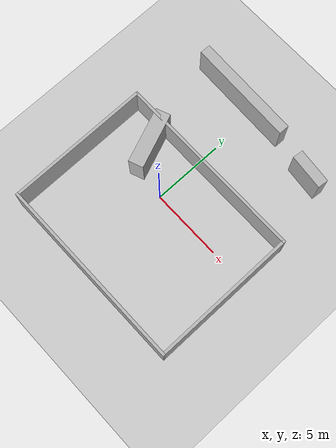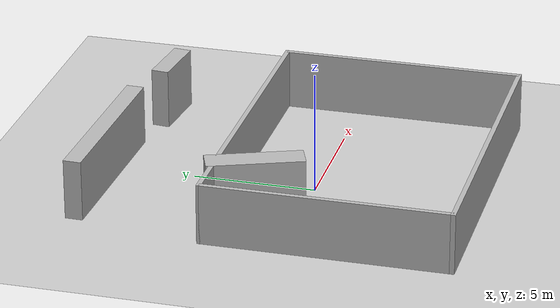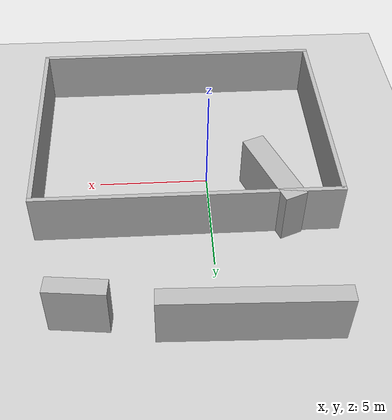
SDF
<?xml version="1.0" ?>
<sdf version="1.5">
  <world name="default">
    <!-- A global light source -->
    <include>
      <uri>model://sun</uri>
    </include>

    <!-- A ground plane -->
    <include>
      <uri>model://ground_plane</uri>
    </include>

    <!-- Room from map -->
    <model name="room_model">
      <static>true</static>
      <link name="walls_link">

        <collision name="north_wall_collision">
          <pose>1.0700000000000003 3.160000000000001 1.25 0 0 0</pose>
          <geometry>
            <box>
              <size>13.5 0.2 2.5</size>
            </box>
          </geometry>
        </collision>
        <visual name="north_wall_visual">
          <pose>1.0700000000000003 3.160000000000001 1.25 0 0 0</pose>
          <geometry>
            <box>
              <size>13.5 0.2 2.5</size>
            </box>
          </geometry>
          <material>
            <script>
              <uri>file://media/materials/scripts/gazebo.material</uri>
              <n>Gazebo/White</n>
            </script>
          </material>
        </visual>

        <!-- South wall -->
        <collision name="south_wall_collision">
          <pose>1.0700000000000003 -6.79 1.25 0 0 0</pose>
          <geometry>
            <box>
              <size>13.5 0.2 2.5</size>
            </box>
          </geometry>
        </collision>
        <visual name="south_wall_visual">
          <pose>1.0700000000000003 -6.79 1.25 0 0 0</pose>
          <geometry>
            <box>
              <size>13.5 0.2 2.5</size>
            </box>
          </geometry>
          <material>
            <script>
              <uri>file://media/materials/scripts/gazebo.material</uri>
              <n>Gazebo/White</n>
            </script>
          </material>
        </visual>

        <!-- East wall -->
        <collision name="east_wall_collision">
          <pose>7.720000000000001 -1.8149999999999995 1.25 0 0 0</pose>
          <geometry>
            <box>
              <size>0.2 9.950000000000001 2.5</size>
            </box>
          </geometry>
        </collision>
        <visual name="east_wall_visual">
          <pose>7.720000000000001 -1.8149999999999995 1.25 0 0 0</pose>
          <geometry>
            <box>
              <size>0.2 9.950000000000001 2.5</size>
            </box>
          </geometry>
          <material>
            <script>
              <uri>file://media/materials/scripts/gazebo.material</uri>
              <n>Gazebo/White</n>
            </script>
          </material>
        </visual>

        <!-- West wall -->
        <collision name="west_wall_collision">
          <pose>-5.58 -1.8149999999999995 1.25 0 0 0</pose>
          <geometry>
            <box>
              <size>0.2 9.950000000000001 2.5</size>
            </box>
          </geometry>
        </collision>
        <visual name="west_wall_visual">
          <pose>-5.58 -1.8149999999999995 1.25 0 0 0</pose>
          <geometry>
            <box>
              <size>0.2 9.950000000000001 2.5</size>
            </box>
          </geometry>
          <material>
            <script>
              <uri>file://media/materials/scripts/gazebo.material</uri>
              <n>Gazebo/White</n>
            </script>
          </material>
        </visual>
        <!-- Obstacle 1 -->
        <collision name="obstacle_1_collision">
          <pose>-1.13 8.41 1.25 0 0 1.5422312898551092</pose>
          <geometry>
            <box>
              <size>0.7311302185058595 7.499796295166016 2.5</size>
            </box>
          </geometry>
        </collision>
        <visual name="obstacle_1_visual">
          <pose>-1.13 8.41 1.25 0 0 1.5422312898551092</pose>
          <geometry>
            <box>
              <size>0.7311302185058595 7.499796295166016 2.5</size>
            </box>
          </geometry>
          <material>
            <script>
              <uri>file://media/materials/scripts/gazebo.material</uri>
              <n>Gazebo/Grey</n>
            </script>
          </material>
        </visual>
        <!-- Obstacle 2 -->
        <collision name="obstacle_2_collision">
          <pose>5.570000000000001 7.660000000000001 1.25 0 0 1.4677133091782464</pose>
          <geometry>
            <box>
              <size>0.7322988986968995 2.478154563903809 2.5</size>
            </box>
          </geometry>
        </collision>
        <visual name="obstacle_2_visual">
          <pose>5.570000000000001 7.660000000000001 1.25 0 0 1.4677133091782464</pose>
          <geometry>
            <box>
              <size>0.7322988986968995 2.478154563903809 2.5</size>
            </box>
          </geometry>
          <material>
            <script>
              <uri>file://media/materials/scripts/gazebo.material</uri>
              <n>Gazebo/Grey</n>
            </script>
          </material>
        </visual>
        <!-- Obstacle 3 -->
        <collision name="obstacle_3_collision">
          <pose>-2.7800000000000002 1.71 1.25 0 0 0.3701705234460831</pose>
          <geometry>
            <box>
              <size>1.0331449508666992 3.932907867431641 2.5</size>
            </box>
          </geometry>
        </collision>
        <visual name="obstacle_3_visual">
          <pose>-2.7800000000000002 1.71 1.25 0 0 0.3701705234460831</pose>
          <geometry>
            <box>
              <size>1.0331449508666992 3.932907867431641 2.5</size>
            </box>
          </geometry>
          <material>
            <script>
              <uri>file://media/materials/scripts/gazebo.material</uri>
              <n>Gazebo/Grey</n>
            </script>
          </material>
        </visual>
      </link>
    </model>
  </world>
</sdf>
